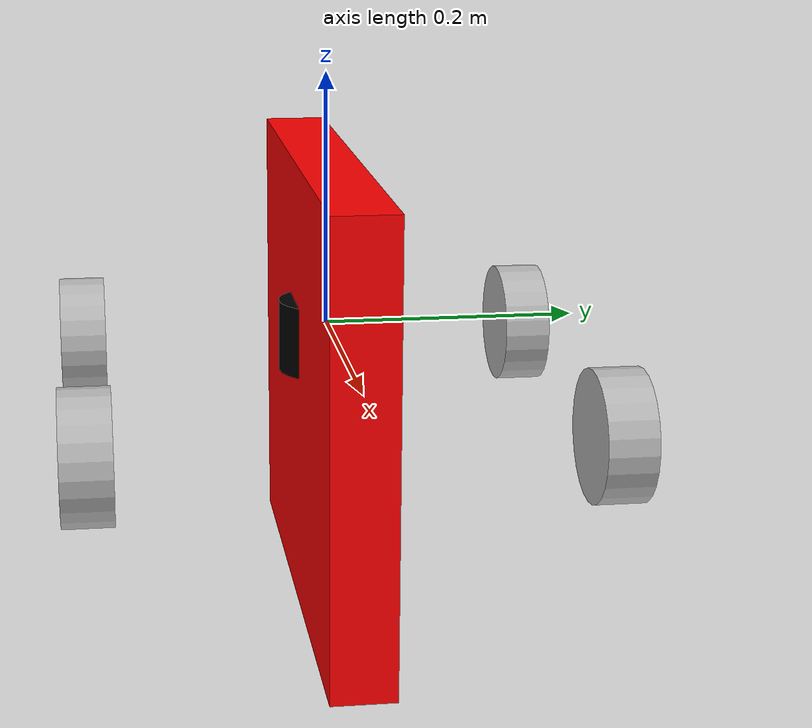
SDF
<?xml version="1.0" ?>
<sdf version="1.5">
  <model name="robo_holly">
  <static>false</static>

  <!-- ****************** ROBOT BASE FOOTPRINT ***************************  -->
  <pose>0.0 0.0 0.0 0.0 0.0 0.0</pose>
  <link name="base_footprint"/>

  <!-- ********************** ROBOT BASE *********************************  -->
  <link name="base_link">

    <collision name="base_collision">
      <pose>0 0 0.1 0 0 0</pose>
      <geometry>
        <box>
          <size>0.4318 0.36195 0.0508</size>
        </box>
      </geometry>
    </collision>

    <visual name="base_visual">
      <pose>0 0 -0.05 1.5707963267949 0 3.141592654</pose>
      <geometry>
        <box>
          <size>0.4318 0.36195 0.0508</size>
        </box>
      </geometry>
      <material>
        <ambient>1.0 0.0 0.0 1.0</ambient>
        <diffuse>1.0 0.0 0.0 1.0</diffuse>
        <specular>0.0 0.0 0.0 1.0</specular>
        <emissive>0.0 0.0 0.0 1.0</emissive>
      </material>
    </visual>
  </link>

  <!-- *********************** IMU SENSOR SETUP **************************  -->
  <link name="imu_link">
    <gravity>true</gravity>
    <sensor name="bmb_imu" type="imu">
      <always_on>true</always_on>
      <update_rate>100</update_rate>
      <visualize>true</visualize>
      <imu>
        <orientation>
          <x>
            <noise type="gaussian">
              <mean>0.0</mean>
              <stddev>2e-3</stddev>
            </noise>
          </x>
          <y>
            <noise type="gaussian">
              <mean>0.0</mean>
              <stddev>2e-3</stddev>
            </noise>
          </y>
          <z>
            <noise type="gaussian">
              <mean>0.0</mean>
              <stddev>2e-3</stddev>
            </noise>
          </z>
        </orientation>
        <angular_velocity>
          <x>
            <noise type="gaussian">
              <mean>0.0</mean>
              <stddev>2e-4</stddev>
            </noise>
          </x>
          <y>
            <noise type="gaussian">
              <mean>0.0</mean>
              <stddev>2e-4</stddev>
            </noise>
          </y>
          <z>
            <noise type="gaussian">
              <mean>0.0</mean>
              <stddev>2e-4</stddev>
            </noise>
          </z>
        </angular_velocity>
        <linear_acceleration>
          <x>
            <noise type="gaussian">
              <mean>0.0</mean>
              <stddev>1.7e-2</stddev>
            </noise>
          </x>
          <y>
            <noise type="gaussian">
              <mean>0.0</mean>
              <stddev>1.7e-2</stddev>
            </noise>
          </y>
          <z>
            <noise type="gaussian">
              <mean>0.0</mean>
              <stddev>1.7e-2</stddev>
            </noise>
          </z>
        </linear_acceleration>
      </imu>
      <plugin name="basic_mobile_bot_imu" filename="libgazebo_ros_imu_sensor.so">
        <initial_orientation_as_reference>false</initial_orientation_as_reference>
        <frame_name>imu_link</frame_name>
        <ros>
          <namespace>/imu</namespace>
          <remapping>~/out:=data</remapping>
        </ros>
      </plugin>
    </sensor>
  </link>

  <!-- *********************** GPS SETUP *********************************  -->
  <link name="gps_link">
    <sensor name="bmb_gps" type="gps">
      <always_on>true</always_on>
      <update_rate>10.0</update_rate>
      <gps>
        <position_sensing>
          <horizontal>
            <noise type="gaussian">
              <mean>0.0</mean>
              <stddev>1e-2</stddev>
            </noise>
          </horizontal>
          <vertical>
            <noise type="gaussian">
              <mean>0.0</mean>
              <stddev>1</stddev>
            </noise>
          </vertical>
        </position_sensing>
      </gps>
      <plugin name="basic_mobile_bot_gps" filename="libgazebo_ros_gps_sensor.so">
        <ros>
          <remapping>~/out:=gps/fix</remapping>
        </ros>
      </plugin>
    </sensor>
  </link>

  <!-- ****************************** LIDAR *****************************    -->
  <link name="lidar_link">
    <inertial>
      <pose>0 0 -0.01 0 0 0</pose>
      <inertia>
        <ixx>0.001</ixx>
        <ixy>0.000</ixy>
        <ixz>0.000</ixz>
        <iyy>0.001</iyy>
        <iyz>0.000</iyz>
        <izz>0.001</izz>
      </inertia>
      <mass>0.114</mass>
    </inertial>

    <collision name="lidar_collision">
      <pose>0 0 0.01 0 0 0</pose>
      <geometry>
        <cylinder>
          <radius>0.0381</radius>
          <length>0.057</length>
        </cylinder>
      </geometry>
    </collision>

    <visual name="lidar_visual">
      <pose>0 0 -0.01 0 0 0</pose>
      <geometry>
        <cylinder>
          <radius>0.0381</radius>
          <length>0.057</length>
        </cylinder>
      </geometry>
      <material>
        <ambient>0.0 0.0 0.0 1.0</ambient>
        <diffuse>0.0 0.0 0.0 1.0</diffuse>
        <specular>0.0 0.0 0.0 1.0</specular>
        <emissive>0.0 0.0 0.0 1.0</emissive>
      </material>
    </visual>

    <sensor name="lidar" type="ray">
      <pose>0 0 -0.01 0 0 0</pose>
      <always_on>true</always_on>
      <visualize>true</visualize>
      <update_rate>5</update_rate>
      <ray>
        <scan>
          <horizontal>
            <samples>120</samples>
            <resolution>1.000000</resolution>
            <min_angle>-3.14159</min_angle>
            <max_angle>3.14159</max_angle>
          </horizontal>
        </scan>
        <range>
          <min>0.3</min>
          <max>15.0</max>
          <resolution>0.015</resolution>
        </range>
        <noise>
          <type>gaussian</type>
          <mean>0.0</mean>
          <stddev>0.01</stddev>
        </noise>
      </ray>
      <plugin name="scan" filename="libgazebo_ros_ray_sensor.so">
        <ros>
          <remapping>~/out:=scan</remapping>
        </ros>
        <output_type>sensor_msgs/LaserScan</output_type>
        <frame_name>lidar_link</frame_name>
      </plugin>
    </sensor>
  </link>

  <!-- *********************** DRIVE WHEELS ******************************  -->
  <link name="drivewhl_lf_link">
    <pose>-0.1651 0.194 -0.05 0 1.570796 1.570796</pose>

    <collision name="drivewhl_lf_collision">
      <geometry>
        <cylinder>
          <radius>0.0508</radius>
          <length>0.0381</length>
        </cylinder>
      </geometry>
    </collision>

    <visual name="drivewhl_lf_visual">
      <geometry>
        <cylinder>
          <radius>0.0508</radius>
          <length>0.0381</length>
        </cylinder>
      </geometry>
    </visual>
  </link>

  <link name="drivewhl_rf_link">
    <pose>-0.1651 -0.194 -0.05 0 1.570796 1.570796</pose>

    <collision name="drivewhl_rf_collision">
      <geometry>
        <cylinder>
          <radius>0.0508</radius>
          <length>0.0381</length>
        </cylinder>
      </geometry>
    </collision>

    <visual name="drivewhl_rf_visual">
      <geometry>
        <cylinder>
          <radius>0.0508</radius>
          <length>0.0381</length>
        </cylinder>
      </geometry>
    </visual>
  </link>

  <link name="drivewhl_lb_link">
    <pose>0.1651 0.194 -0.05 0 1.570796 1.570796</pose>

    <collision name="drivewhl_lb_collision">
      <geometry>
        <cylinder>
          <radius>0.0508</radius>
          <length>0.0381</length>
        </cylinder>
      </geometry>
    </collision>

    <visual name="drivewhl_lb_visual">
      <geometry>
        <cylinder>
          <radius>0.0508</radius>
          <length>0.0381</length>
        </cylinder>
      </geometry>
    </visual>
  </link>

  <link name="drivewhl_rb_link">
    <pose>0.1651 -0.194 -0.05 0 1.570796 1.570796</pose>

    <collision name="drivewhl_rb_collision">
      <geometry>
        <cylinder>
          <radius>0.0508</radius>
          <length>0.0381</length>
        </cylinder>
      </geometry>
    </collision>

    <visual name="drivewhl_rb_visual">
      <geometry>
        <cylinder>
          <radius>0.0508</radius>
          <length>0.0381</length>
        </cylinder>
      </geometry>
    </visual>
  </link>

  <!-- ************************ JOINTS ***********************************  -->
  <!-- Pose of the joint is the same as the child link frame -->
  <!-- Axis is the axis of rotation relative to the child link frame -->

  <joint name="base_joint" type="fixed">
    <parent>base_footprint</parent>
    <child>base_link</child>
    <pose>0 0 0 0 0 0</pose>
  </joint>

  <joint name="drivewhl_lf_joint" type="revolute">
    <parent>base_link</parent>
    <child>drivewhl_lf_link</child>
    <pose>0 0 0 0 0 0</pose>
    <axis>
      <xyz>0 0 1</xyz>
    </axis>
  </joint>

  <joint name="drivewhl_rf_joint" type="revolute">
    <parent>base_link</parent>
    <child>drivewhl_rf_link</child>
    <pose>0 0 0 0 0 0</pose>
    <axis>
      <xyz>0 0 1</xyz>
    </axis>
  </joint>

  <joint name="drivewhl_lb_joint" type="revolute">
    <parent>base_link</parent>
    <child>drivewhl_lb_link</child>
    <pose>0 0 0 0 0 0</pose>
    <axis>
      <xyz>0 0 1</xyz>
    </axis>
  </joint>

  <joint name="drivewhl_rb_joint" type="revolute">
    <parent>base_link</parent>
    <child>drivewhl_rb_link</child>
    <pose>0 0 0 0 0 0</pose>
    <axis>
      <xyz>0 0 1</xyz>
    </axis>
  </joint>

  <joint name="imu_joint" type="fixed">
    <parent>base_link</parent>
    <child>imu_link</child>
    <pose>0 0 0 0 0 0</pose>
  </joint>

  <joint name="gps_joint" type="fixed">
    <parent>base_link</parent>
    <child>gps_link</child>
    <pose>0 0 0 0 0 0</pose>
  </joint>

  <joint name="lidar_joint" type="fixed">
    <parent>base_link</parent>
    <child>lidar_link</child>
    <pose>0 0 0 0 0 0</pose>
  </joint>

 <!-- *********************** WHEEL ODOMETRY ***************************    -->
  <plugin name="holly_diff_drive" filename="libgazebo_ros_diff_drive_mod.so">

    <update_rate>30</update_rate>

    <!-- wheels -->
    <num_wheel_pairs>2</num_wheel_pairs>
    <left_joint>drivewhl_lf_joint</left_joint>
    <left_joint>drivewhl_lb_joint</left_joint>

    <right_joint>drivewhl_rf_joint</right_joint>
    <right_joint>drivewhl_rb_joint</right_joint>

    <!-- kinematics -->
    <wheel_separation>0.3746</wheel_separation>
    <wheel_diameter>0.1</wheel_diameter>

    <!-- limits -->
    <max_wheel_torque>20</max_wheel_torque>
    <max_wheel_acceleration>1.0</max_wheel_acceleration>

    <!-- Receive velocity commands on this ROS topic -->
    <command_topic>cmd_vel</command_topic>

    <!-- output -->
    <!-- When false, publish no wheel odometry data to a ROS topic -->
    <publish_odom>true</publish_odom>

    <!-- When true, publish coordinate transform from odom to base_footprint -->
    <!-- I usually use the robot_localization package to publish this transform -->
    <publish_odom_tf>false</publish_odom_tf>

    <!-- When true, publish coordinate transform from base_link to the wheels -->
    <!-- The robot_state_publisher package is often used to publish this transform -->
    <publish_wheel_tf>false</publish_wheel_tf>

    <odometry_topic>odom</odometry_topic>
    <odometry_frame>odom</odometry_frame>
    <robot_base_frame>base_footprint</robot_base_frame>

    <!-- Odometry source, 0 for ENCODER, 1 for WORLD, defaults to WORLD -->
    <odometry_source>1</odometry_source>

    <!-- Change the ROS topic we will publish the odometry data to -->
    <ros>
      <remapping>odom:=wheel/odometry</remapping>
    </ros>

  </plugin>

 <!-- *********************** JOINT STATE PUBLISHER *********************   -->

  <plugin name="robo_holly_joint_state" filename="libgazebo_ros_joint_state_publisher.so">
    <ros>
      <remapping>~/out:=joint_states</remapping>
    </ros>
    <update_rate>30</update_rate>
    <joint_name>drivewhl_lf_joint</joint_name>
    <joint_name>drivewhl_rf_joint</joint_name>
    <joint_name>drivewhl_lb_joint</joint_name>
    <joint_name>drivewhl_rb_joint</joint_name>
  </plugin>

  </model>
</sdf>
